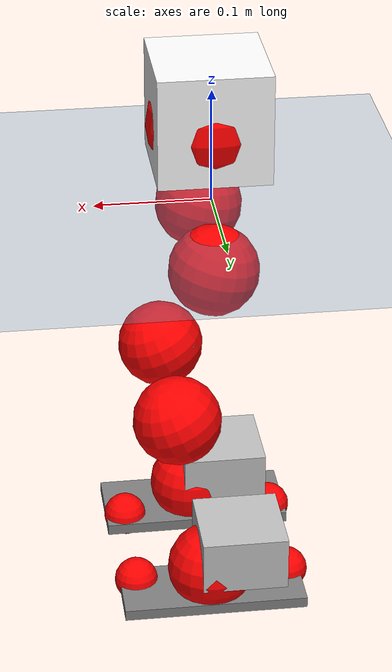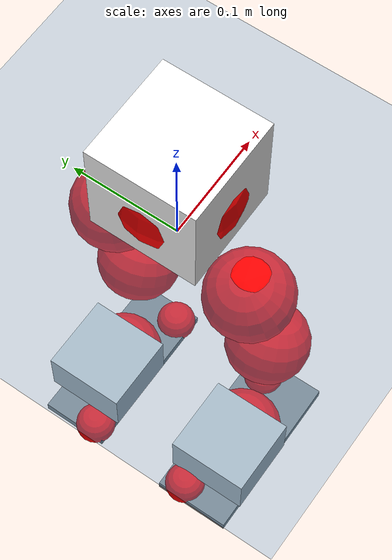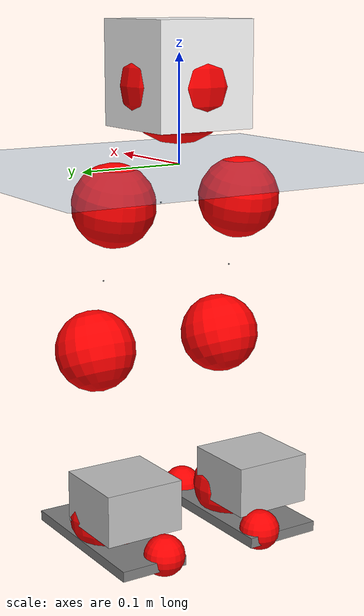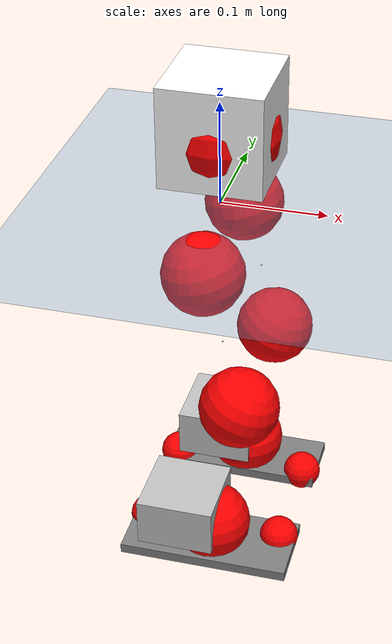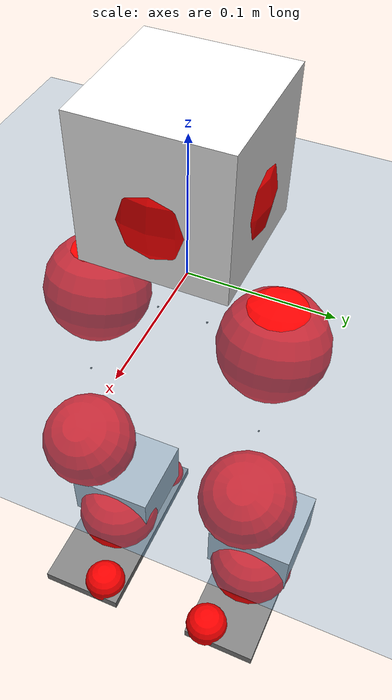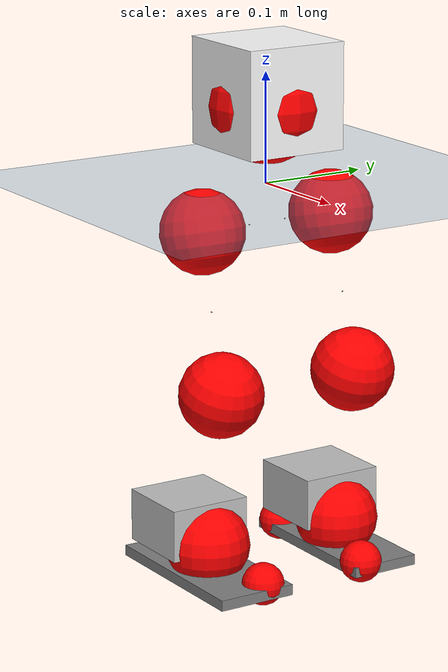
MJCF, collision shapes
<mujoco model="pi_12dof_release_v1">
  <compiler angle="radian" assetdir="assets" balanceinertia="true" inertiafromgeom="false"/>

  <option timestep="0.005" density="1.2" viscosity="2e-05"/>

  <size nkey="1"/>

  <visual>
    <quality shadowsize="8192"/>
    <map shadowclip="0.5"/>
  </visual>

  <default>
    <default class="/">
      <joint armature="0.01" damping="0.01" frictionloss="0.01"/>
      <geom contype="0" conaffinity="0" group="1" solref="-1000 -80"/>
      <site size="0.01 0.005 0.005" group="5"/>
      <general forcelimited="true" biastype="affine" gainprm="20" biasprm="0 -20 -0.5"/>
      <default class="foot">
        <geom size="0.0845 0.036 0.005" type="box" condim="6" group="4" priority="1" friction="0.9 0.2 0.2" solimp="0.015 1 0.005"/>
      </default>
      <default class="reward_collision_sphere">
        <geom group="5" rgba="1 0 0 1"/>
      </default>
    </default>
  </default>

  <asset>
    <texture type="skybox" colorspace="auto" name="//unnamed_texture_0" builtin="gradient" rgb1="0.95 0.95 0.95" rgb2="0.95 0.95 0.95" width="100" height="600"/>
    <texture type="2d" colorspace="auto" name="texplane" builtin="checker" rgb1="0.345 0.575 0.748" rgb2="0.345 0.575 0.748" markrgb="1 1 1" width="512" height="512"/>
    <material name="MatPlane" class="/" texture="texplane" texuniform="true" texrepeat="2 2" specular="0.9"/>
    <mesh name="baselink_1" class="/" file="baselink_1.STL"/>
    <mesh name="r_hip_pitch_link" class="/" file="r_hip_pitch_link.STL"/>
    <mesh name="r_hip_roll_link" class="/" file="r_hip_roll_link.STL"/>
    <mesh name="r_thigh_link" class="/" file="r_thigh_link.STL"/>
    <mesh name="r_calf_link" class="/" file="r_calf_link.STL"/>
    <mesh name="r_ankle_pitch_link" class="/" file="r_ankle_pitch_link.STL"/>
    <mesh name="r_ankle_roll_link" class="/" file="r_ankle_roll_link.STL"/>
    <mesh name="l_hip_pitch_link" class="/" file="l_hip_pitch_link.STL"/>
    <mesh name="l_hip_roll_link" class="/" file="l_hip_roll_link.STL"/>
    <mesh name="l_thigh_link" class="/" file="l_thigh_link.STL"/>
    <mesh name="l_calf_link" class="/" file="l_calf_link.STL"/>
    <mesh name="l_ankle_pitch_link" class="/" file="l_ankle_pitch_link.STL"/>
    <mesh name="l_ankle_roll_link" class="/" file="l_ankle_roll_link.STL"/>
  </asset>

  <worldbody>
    <geom name="floor" class="/" size="100 100 0.125" type="plane" group="0" material="MatPlane"/>
    <light name="toplight_shadow" class="/" pos="0 0 5" dir="0.0990148 0.0990148 -0.990148" type="directional" ambient="0.04 0.04 0.04" diffuse="0.55 0.55 0.55" specular="0.12 0.12 0.12"/>
    <light name="toplight_fill" class="/" pos="0 0 5" dir="0.0990148 0.0990148 -0.990148" type="directional" castshadow="false" ambient="0.04 0.04 0.04" diffuse="0.3 0.3 0.3" specular="0.08 0.08 0.08"/>
    <body name="trunk" pos="0.0026975 -0.000297182 -0.000275215" quat="1 -0.000481142 0.000178987 0.000149587">
      <inertial pos="0.00219059 0.000626617 0.0414174" quat="0.695962 0.0120369 0.0127467 0.717865" mass="1.91649" diaginertia="0.0105259 0.0043712 0.00469787"/>
      <joint name="//unnamed_joint_0" type="free"/>
      <geom name="//unnamed_geom_1" class="/" type="mesh" density="0" rgba="1 1 1 1" mesh="baselink_1"/>
      <geom name="//unnamed_geom_2" class="/" size="0.0480608 0.0480608 0.0480608" pos="0 0 0.0819501" type="box" rgba="1 1 1 1"/>
      <geom name="//unnamed_geom_3" class="reward_collision_sphere" size="0.0528669" pos="0 0 0.0717063"/>
      <site name="imu" class="/" pos="-0.00499964 0.00292299 -0.0135564" size="0.00961217"/>
      <camera name="track" class="/" pos="0 -1.71502 0" quat="0.707107 0.707107 0 0" mode="trackcom"/>
      <camera name="ego_camera" class="/" pos="0.0751322 0 0.184388" quat="-0.5 -0.5 0.5 0.5"/>
      <body name="r_hip_pitch_link" pos="0.00106001 -0.0197988 -0.0346748" quat="0.992123 -0.000933705 -0.125262 0.000769938">
        <inertial pos="-0.00164244 -0.0488946 -6.78919e-05" quat="-0.019248 0.704982 -0.0292352 0.708361" mass="0.330651" diaginertia="0.000110169 4.39912e-05 9.35229e-05"/>
        <joint name="r_hip_pitch_joint" class="/" pos="0 0 0" axis="0.00180823 -0.999902 -0.0139108" stiffness="0.00264954" range="-1.69495 1.28347" armature="0.00961469" damping="0.0257893" frictionloss="0.0095377"/>
        <geom name="//unnamed_geom_4" class="/" type="mesh" density="0" rgba="0.75294 0.75294 0.75294 1" mesh="r_hip_pitch_link"/>
        <geom name="//unnamed_geom_5" class="/" size="0.000480608 0.000480608 0.000480608" type="box" rgba="0.75294 0.75294 0.75294 1"/>
        <body name="r_hip_roll_link" pos="-0.00176361 -0.0476083 -0.000290499" quat="1 -0.000221129 -1.74914e-06 0.000207041">
          <inertial pos="-0.00120142 0.000333357 -0.0653325" quat="0.705321 -0.0805643 -0.0823478 0.699464" mass="0.350082" diaginertia="0.000342006 0.000129936 0.000145146"/>
          <joint name="r_hip_roll_joint" class="/" pos="0 0 0" axis="-0.999918 -0.00864681 -0.0094498" range="-0.134705 0.549982" armature="0.00954268" damping="0.00223051" frictionloss="0.00861735"/>
          <geom name="//unnamed_geom_6" class="/" type="mesh" density="0" rgba="0.75294 0.75294 0.75294 1" mesh="r_hip_roll_link"/>
          <geom name="//unnamed_geom_7" class="/" size="0.000480608 0.000480608 0.000480608" type="box" rgba="0.75294 0.75294 0.75294 1"/>
          <geom name="//unnamed_geom_8" class="reward_collision_sphere" size="0.0384487"/>
          <body name="r_thigh_link" pos="0.000914713 -0.00224377 -0.0707827" quat="1 0.000482679 0.000823021 0.000108597">
            <inertial pos="0.00087427 0.00194853 -0.0487121" quat="0.729211 0.684254 0.0037612 0.0057291" mass="0.103475" diaginertia="0.000124567 4.44322e-05 6.42855e-05"/>
            <joint name="r_thigh_joint" class="/" pos="0 0 0" axis="-0.00887326 0.00414246 -0.999952" range="-0.261401 0.648871" armature="0.00939243" damping="0.00268259" frictionloss="0.00947475"/>
            <geom name="//unnamed_geom_9" class="/" type="mesh" density="0" rgba="0.75294 0.75294 0.75294 1" mesh="r_thigh_link"/>
            <geom name="//unnamed_geom_10" class="/" size="0.000480608 0.000480608 0.000480608" type="box" rgba="0.75294 0.75294 0.75294 1"/>
            <body name="r_calf_link" pos="-0.00252594 -2.21162e-05 -0.0741646" quat="0.947653 -1.9491e-05 0.319302 3.6107e-05">
              <inertial pos="0.00239188 -0.00148878 -0.0742458" quat="0.99997 -0.00491709 -0.00583833 0.0015188" mass="0.741186" diaginertia="0.00365351 0.00164236 0.000203972"/>
              <joint name="r_calf_joint" class="/" pos="0 0 0" axis="0.00893443 -0.999959 -0.00145421" range="-1.65161 0.649403" armature="0.00991499" damping="0.0128086" frictionloss="0.0100104"/>
              <geom name="//unnamed_geom_11" class="/" type="mesh" density="0" rgba="0.75294 0.75294 0.75294 1" mesh="r_calf_link"/>
              <geom name="//unnamed_geom_12" class="/" size="0.000480608 0.000480608 0.000480608" type="box" rgba="0.75294 0.75294 0.75294 1"/>
              <geom name="//unnamed_geom_13" class="reward_collision_sphere" size="0.0384487"/>
              <body name="r_ankle_pitch_link" pos="0.000219643 -0.000445936 -0.142156" quat="0.980069 -4.27024e-05 -0.198659 1.87936e-05">
                <inertial pos="0.00409239 0.00558342 -0.00135642" quat="0.00242627 0.706522 -0.00253173 0.707683" mass="0.155012" diaginertia="0.000311725 0.000100892 0.000133985"/>
                <joint name="r_ankle_pitch_joint" class="/" pos="0 0 0" axis="0.00464469 -0.999947 -0.00914185" stiffness="0.00114315" range="-1.30023 0.500635" armature="0.00849506" damping="0.00989013" frictionloss="0.00864176"/>
                <geom name="//unnamed_geom_14" class="/" type="mesh" density="0" rgba="0.75294 0.75294 0.75294 1" mesh="r_ankle_pitch_link"/>
                <geom name="//unnamed_geom_15" class="/" size="0.0374874 0.0384487 0.0240304" type="box" rgba="0.75294 0.75294 0.75294 1"/>
                <body name="r_ankle_roll_link" pos="0.0771991 0.00352228 0.00272776" quat="0.999999 0.000107704 -5.97634e-05 0.00135934">
                  <inertial pos="-0.0214169 -0.00132735 -0.0124259" quat="0.561699 0.429397 0.436967 0.556033" mass="0.449976" diaginertia="0.00116165 0.000498387 0.000333233"/>
                  <joint name="r_ankle_roll_joint" class="/" pos="0 0 0" axis="-0.999921 -0.00313109 0.0122035" range="-0.15679 0.165266" armature="0.00911808" damping="0.0208188" frictionloss="0.00998389"/>
                  <geom name="//unnamed_geom_16" class="/" type="mesh" density="0" rgba="0.75294 0.75294 0.75294 1" mesh="r_ankle_roll_link"/>
                  <geom name="//unnamed_geom_17" class="/" type="mesh" rgba="0.75294 0.75294 0.75294 1" mesh="r_ankle_roll_link"/>
                  <geom name="right_foot" class="foot" size="0.0836286 0.0370641 0.00490544" pos="-0.0510899 0 -0.0450725"/>
                  <geom name="//unnamed_geom_19" class="reward_collision_sphere" size="0.0384487" pos="-0.0500881 0 -0.0204875"/>
                  <geom name="//unnamed_geom_20" class="reward_collision_sphere" size="0.0192243" pos="0.0150264 0.0171502 -0.040975"/>
                  <geom name="//unnamed_geom_21" class="reward_collision_sphere" size="0.0192243" pos="-0.120211 0.0171502 -0.040975"/>
                  <site name="right_foot" class="foot" pos="-0.0510899 0 -0.0450725" size="0.00961217"/>
                </body>
              </body>
            </body>
          </body>
        </body>
      </body>
      <body name="l_hip_pitch_link" pos="0.00194113 0.0172332 -0.0336274" quat="0.992219 0.000317231 -0.124507 -0.00026429">
        <inertial pos="0.00357996 0.0437279 -0.000103897" quat="-0.041285 0.714609 0.0303773 0.697644" mass="0.345555" diaginertia="0.000131682 4.9044e-05 0.000110359"/>
        <joint name="l_hip_pitch_joint" class="/" pos="0 0 0" axis="0.00945464 0.999949 0.00354076" range="-1.30165 1.73624" armature="0.0083106" damping="0.00467409" frictionloss="0.00984457"/>
        <geom name="//unnamed_geom_22" class="/" type="mesh" density="0" rgba="0.75294 0.75294 0.75294 1" mesh="l_hip_pitch_link"/>
        <geom name="//unnamed_geom_23" class="/" size="0.000480608 0.000480608 0.000480608" type="box" rgba="0.75294 0.75294 0.75294 1"/>
        <body name="l_hip_roll_link" pos="0.00204454 0.0483731 0.000527713" quat="1 -5.41922e-05 4.33422e-05 2.03204e-06">
          <inertial pos="-0.00211476 0.00265899 -0.0624063" quat="0.698165 -0.0828261 -0.0694298 0.707733" mass="0.349264" diaginertia="0.000337039 0.000132704 0.000143844"/>
          <joint name="l_hip_roll_joint" class="/" pos="0 0 0" axis="-0.999999 0.000318092 -0.00110281" range="-0.488472 0.118743" armature="0.0109127" damping="0" frictionloss="0.0090704"/>
          <geom name="//unnamed_geom_24" class="/" type="mesh" density="0" rgba="0.75294 0.75294 0.75294 1" mesh="l_hip_roll_link"/>
          <geom name="//unnamed_geom_25" class="/" size="0.000480608 0.000480608 0.000480608" type="box" rgba="0.75294 0.75294 0.75294 1"/>
          <geom name="//unnamed_geom_26" class="reward_collision_sphere" size="0.0384487"/>
          <body name="l_thigh_link" pos="-0.00112175 0.00200171 -0.0735634" quat="0.999999 0.00114048 -0.000456876 -0.000397952">
            <inertial pos="-0.000441869 -0.00157975 -0.0462639" quat="0.678586 0.73452 0.000569285 0.0011216" mass="0.0963604" diaginertia="0.000124909 4.36297e-05 6.55046e-05"/>
            <joint name="l_thigh_joint" class="/" pos="0 0 0" axis="-0.00501271 0.00219532 -0.999985" stiffness="0.000193646" range="-0.655926 0.308216" armature="0.0096155" damping="0" frictionloss="0.00958682"/>
            <geom name="//unnamed_geom_27" class="/" type="mesh" density="0" rgba="0.75294 0.75294 0.75294 1" mesh="l_thigh_link"/>
            <geom name="//unnamed_geom_28" class="/" size="0.000480608 0.000480608 0.000480608" type="box" rgba="0.75294 0.75294 0.75294 1"/>
            <body name="l_calf_link" pos="-0.0032975 0.00139739 -0.0712019" quat="0.947536 -6.55833e-07 0.319648 0.000140459">
              <inertial pos="0.00237464 0.00315731 -0.0716243" quat="0.999941 -0.00785221 -0.00738362 0.00121574" mass="0.729936" diaginertia="0.00364564 0.00167606 0.000202889"/>
              <joint name="l_calf_joint" class="/" pos="0 0 0" axis="0.00786848 0.999905 0.0113525" stiffness="0.00108243" range="-0.611233 1.64705" armature="0.00939455" damping="0.00742953" frictionloss="0.00838487"/>
              <geom name="//unnamed_geom_29" class="/" type="mesh" density="0" rgba="0.75294 0.75294 0.75294 1" mesh="l_calf_link"/>
              <geom name="//unnamed_geom_30" class="/" size="0.000480608 0.000480608 0.000480608" type="box" rgba="0.75294 0.75294 0.75294 1"/>
              <geom name="//unnamed_geom_31" class="reward_collision_sphere" size="0.0384487"/>
              <body name="l_ankle_pitch_link" pos="-7.99443e-05 0.00158451 -0.141243" quat="0.980087 1.71491e-05 -0.198567 -0.000128182">
                <inertial pos="0.00390106 -0.00105821 -0.00108391" quat="0.00725273 0.704984 0.0105347 0.709107" mass="0.158399" diaginertia="0.000308389 0.000106141 0.000139534"/>
                <joint name="l_ankle_pitch_joint" class="/" pos="0 0 0" axis="0.00188647 0.999997 -0.00173184" range="-0.473345 1.33643" armature="0.0101192" damping="0" frictionloss="0.00913569"/>
                <geom name="//unnamed_geom_32" class="/" type="mesh" density="0" rgba="0.75294 0.75294 0.75294 1" mesh="l_ankle_pitch_link"/>
                <geom name="//unnamed_geom_33" class="/" size="0.0374874 0.0384487 0.0240304" type="box" rgba="0.75294 0.75294 0.75294 1"/>
                <body name="l_ankle_roll_link" pos="0.0760014 0.00146875 -0.000310982" quat="1 -5.44381e-05 -0.000185225 0.000106663">
                  <inertial pos="-0.0272705 -0.00278855 -0.0121355" quat="0.559689 0.429455 0.433617 0.560617" mass="0.475943" diaginertia="0.0011176 0.000494394 0.000319653"/>
                  <joint name="l_ankle_roll_joint" class="/" pos="0 0 0" axis="-0.999992 -0.0026048 0.00310716" stiffness="0.00933707" range="-0.174588 0.123047" armature="0.00930166" damping="0.0208818" frictionloss="0.0108957"/>
                  <geom name="//unnamed_geom_34" class="/" type="mesh" density="0" rgba="0.75294 0.75294 0.75294 1" mesh="l_ankle_roll_link"/>
                  <geom name="//unnamed_geom_35" class="/" type="mesh" rgba="0.75294 0.75294 0.75294 1" mesh="l_ankle_roll_link"/>
                  <geom name="left_foot" class="foot" size="0.080826 0.0327762 0.00478491" pos="-0.0510899 0 -0.0450725"/>
                  <geom name="//unnamed_geom_37" class="reward_collision_sphere" size="0.0384487" pos="-0.0500881 0 -0.0204875"/>
                  <geom name="//unnamed_geom_38" class="reward_collision_sphere" size="0.0192243" pos="0.0150264 -0.0171502 -0.040975"/>
                  <geom name="//unnamed_geom_39" class="reward_collision_sphere" size="0.0192243" pos="-0.120211 -0.0171502 -0.040975"/>
                  <site name="left_foot" class="foot" pos="-0.0510899 0 -0.0450725" size="0.00961217"/>
                </body>
              </body>
            </body>
          </body>
        </body>
      </body>
    </body>
  </worldbody>

  <contact>
    <pair class="/" geom1="floor" geom2="right_foot" name="//unnamed_contact_1"/>
    <pair class="/" geom1="floor" geom2="left_foot" name="//unnamed_contact_0"/>
  </contact>

  <actuator>
    <general name="r_hip_pitch_joint" class="/" joint="r_hip_pitch_joint" forcerange="-20.3355 20.3355" gainprm="19.2143" biasprm="0 -19.2143 -0.486605"/>
    <general name="r_hip_roll_joint" class="/" joint="r_hip_roll_joint" forcerange="-22.2707 22.2707" gainprm="19.2143" biasprm="0 -19.2143 -0.486605"/>
    <general name="r_thigh_joint" class="/" joint="r_thigh_joint" forcerange="-20.4985 20.4985" gainprm="19.2143" biasprm="0 -19.2143 -0.486605"/>
    <general name="r_calf_joint" class="/" joint="r_calf_joint" forcerange="-22.2021 22.2021" gainprm="19.2143" biasprm="0 -19.2143 -0.486605"/>
    <general name="r_ankle_pitch_joint" class="/" joint="r_ankle_pitch_joint" forcerange="-20.9277 20.9277" gainprm="19.2143" biasprm="0 -19.2143 -0.486605"/>
    <general name="r_ankle_roll_joint" class="/" joint="r_ankle_roll_joint" forcerange="-19.4818 19.4818" gainprm="19.2143" biasprm="0 -19.2143 -0.486605"/>
    <general name="l_hip_pitch_joint" class="/" joint="l_hip_pitch_joint" forcerange="-20.0833 20.0833" gainprm="19.2143" biasprm="0 -19.2143 -0.486605"/>
    <general name="l_hip_roll_joint" class="/" joint="l_hip_roll_joint" forcerange="-18.2707 18.2707" gainprm="19.2143" biasprm="0 -19.2143 -0.486605"/>
    <general name="l_thigh_joint" class="/" joint="l_thigh_joint" forcerange="-20.1775 20.1775" gainprm="19.2143" biasprm="0 -19.2143 -0.486605"/>
    <general name="l_calf_joint" class="/" joint="l_calf_joint" forcerange="-20.212 20.212" gainprm="19.2143" biasprm="0 -19.2143 -0.486605"/>
    <general name="l_ankle_pitch_joint" class="/" joint="l_ankle_pitch_joint" forcerange="-19.901 19.901" gainprm="19.2143" biasprm="0 -19.2143 -0.486605"/>
    <general name="l_ankle_roll_joint" class="/" joint="l_ankle_roll_joint" forcerange="-21.1183 21.1183" gainprm="19.2143" biasprm="0 -19.2143 -0.486605"/>
  </actuator>

  <sensor>
    <gyro site="imu" name="imu_angular_velocity"/>
    <velocimeter site="imu" name="imu_linear_velocity"/>
    <framelinvel objtype="site" objname="left_foot" name="left_foot_global_linear_velocity"/>
    <framelinvel objtype="site" objname="right_foot" name="right_foot_global_linear_velocity"/>
  </sensor>

  <keyframe>
    <key name="home" qpos="0 0 0.291 1 0 0 0 0.4 0 0 -0.8 0.4 0 -0.4 0 0 0.8 -0.4 0"/>
  </keyframe>
</mujoco>
